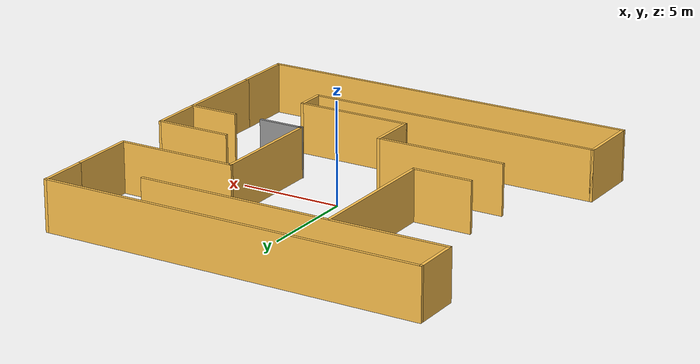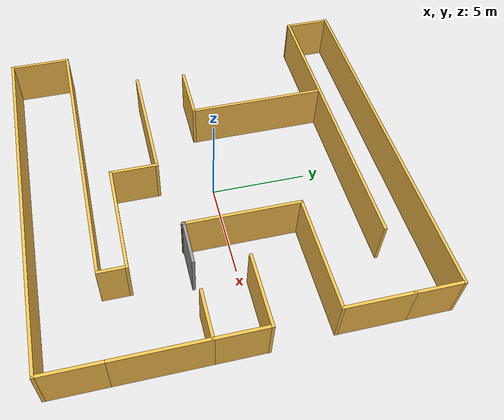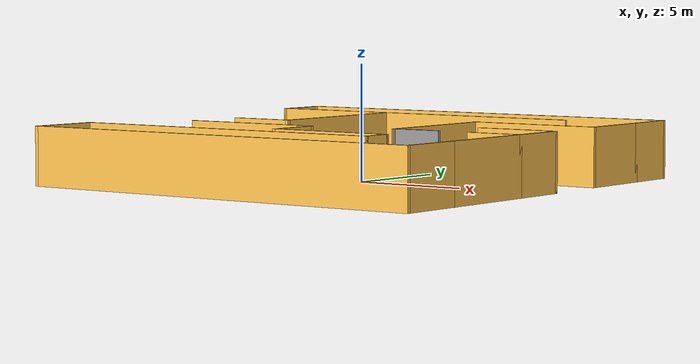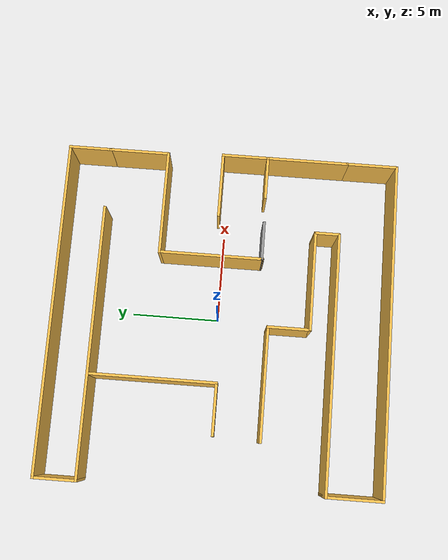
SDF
<?xml version='1.0'?>
<sdf version='1.7'>
  <model name='walls'>
    <pose>-0.145205 -0.183069 0 0 -0 0</pose>
    <link name='Wall_16'>
      <collision name='Wall_16_Collision'>
        <geometry>
          <box>
            <size>3.5 0.15 2.5</size>
          </box>
        </geometry>
        <pose>0 0 1.25 0 -0 0</pose>
      </collision>
      <visual name='Wall_16_Visual'>
        <pose>0 0 1.25 0 -0 0</pose>
        <geometry>
          <box>
            <size>3.5 0.15 2.5</size>
          </box>
        </geometry>
        <material>
          <script>
            <uri>file://media/materials/scripts/gazebo.material</uri>
            <name>Gazebo/Grey</name>
          </script>
          <ambient>1 0.764706 0.305882 1</ambient>
        </material>
        <meta>
          <layer>0</layer>
        </meta>
      </visual>
      <pose>9.3474 5.43857 0 0 -0 -1.5708</pose>
    </link>
    <link name='Wall_17'>
      <collision name='Wall_17_Collision'>
        <geometry>
          <box>
            <size>6 0.15 2.5</size>
          </box>
        </geometry>
        <pose>0 0 1.25 0 -0 0</pose>
      </collision>
      <visual name='Wall_17_Visual'>
        <pose>0 0 1.25 0 -0 0</pose>
        <geometry>
          <box>
            <size>6 0.15 2.5</size>
          </box>
        </geometry>
        <material>
          <script>
            <uri>file://media/materials/scripts/gazebo.material</uri>
            <name>Gazebo/Grey</name>
          </script>
          <ambient>1 0.764706 0.305882 1</ambient>
        </material>
        <meta>
          <layer>0</layer>
        </meta>
      </visual>
      <pose>6.4224 3.76357 0 0 -0 3.14159</pose>
    </link>
    <link name='Wall_18'>
      <collision name='Wall_18_Collision'>
        <geometry>
          <box>
            <size>6 0.15 2.5</size>
          </box>
        </geometry>
        <pose>0 0 1.25 0 -0 0</pose>
      </collision>
      <visual name='Wall_18_Visual'>
        <pose>0 0 1.25 0 -0 0</pose>
        <geometry>
          <box>
            <size>6 0.15 2.5</size>
          </box>
        </geometry>
        <material>
          <script>
            <uri>file://media/materials/scripts/gazebo.material</uri>
            <name>Gazebo/Grey</name>
          </script>
          <ambient>1 0.764706 0.305882 1</ambient>
        </material>
        <meta>
          <layer>0</layer>
        </meta>
      </visual>
      <pose>3.4974 0.838571 0 0 -0 -1.5708</pose>
    </link>
    <link name='Wall_21'>
      <collision name='Wall_21_Collision'>
        <geometry>
          <box>
            <size>0.19443 0.15 2.5</size>
          </box>
        </geometry>
        <pose>0 0 1.25 0 -0 0</pose>
      </collision>
      <visual name='Wall_21_Visual'>
        <pose>0 0 1.25 0 -0 0</pose>
        <geometry>
          <box>
            <size>0.19443 0.15 2.5</size>
          </box>
        </geometry>
        <material>
          <script>
            <uri>file://media/materials/scripts/gazebo.material</uri>
            <name>Gazebo/Grey</name>
          </script>
          <ambient>1 1 1 1</ambient>
        </material>
        <meta>
          <layer>0</layer>
        </meta>
      </visual>
      <pose>3.51086 -2.06875 0 0 -0 0.920084</pose>
    </link>
    <link name='Wall_22'>
      <collision name='Wall_22_Collision'>
        <geometry>
          <box>
            <size>2.25 0.15 2.5</size>
          </box>
        </geometry>
        <pose>0 0 1.25 0 -0 0</pose>
      </collision>
      <visual name='Wall_22_Visual'>
        <pose>0 0 1.25 0 -0 0</pose>
        <geometry>
          <box>
            <size>2.25 0.15 2.5</size>
          </box>
        </geometry>
        <material>
          <script>
            <uri>file://media/materials/scripts/gazebo.material</uri>
            <name>Gazebo/Grey</name>
          </script>
          <ambient>1 1 1 1</ambient>
        </material>
        <meta>
          <layer>0</layer>
        </meta>
      </visual>
      <pose>4.57432 -2.05108 0 0 -0 0</pose>
    </link>
    <link name='Wall_24'>
      <collision name='Wall_24_Collision'>
        <geometry>
          <box>
            <size>2.5 0.15 2.5</size>
          </box>
        </geometry>
        <pose>0 0 1.25 0 -0 0</pose>
      </collision>
      <visual name='Wall_24_Visual'>
        <pose>0 0 1.25 0 -0 0</pose>
        <geometry>
          <box>
            <size>2.5 0.15 2.5</size>
          </box>
        </geometry>
        <material>
          <script>
            <uri>file://media/materials/scripts/gazebo.material</uri>
            <name>Gazebo/Grey</name>
          </script>
          <ambient>1 0.764706 0.305882 1</ambient>
        </material>
        <meta>
          <layer>0</layer>
        </meta>
      </visual>
      <pose>8.3276 -2.01357 0 0 -0 0</pose>
    </link>
    <link name='Wall_25'>
      <collision name='Wall_25_Collision'>
        <geometry>
          <box>
            <size>2.75 0.15 2.5</size>
          </box>
        </geometry>
        <pose>0 0 1.25 0 -0 0</pose>
      </collision>
      <visual name='Wall_25_Visual'>
        <pose>0 0 1.25 0 -0 0</pose>
        <geometry>
          <box>
            <size>2.75 0.15 2.5</size>
          </box>
        </geometry>
        <material>
          <script>
            <uri>file://media/materials/scripts/gazebo.material</uri>
            <name>Gazebo/Grey</name>
          </script>
          <ambient>1 0.764706 0.305882 1</ambient>
        </material>
        <meta>
          <layer>0</layer>
        </meta>
      </visual>
      <pose>9.5026 -0.71357 0 0 -0 1.5708</pose>
    </link>
    <link name='Wall_26'>
      <collision name='Wall_26_Collision'>
        <geometry>
          <box>
            <size>3.75 0.15 2.5</size>
          </box>
        </geometry>
        <pose>0 0 1.25 0 -0 0</pose>
      </collision>
      <visual name='Wall_26_Visual'>
        <pose>0 0 1.25 0 -0 0</pose>
        <geometry>
          <box>
            <size>3.75 0.15 2.5</size>
          </box>
        </geometry>
        <material>
          <script>
            <uri>file://media/materials/scripts/gazebo.material</uri>
            <name>Gazebo/Grey</name>
          </script>
          <ambient>1 0.764706 0.305882 1</ambient>
        </material>
        <meta>
          <layer>0</layer>
        </meta>
      </visual>
      <pose>7.7026 0.58643 0 0 -0 3.14159</pose>
    </link>
    <link name='Wall_28'>
      <collision name='Wall_28_Collision'>
        <geometry>
          <box>
            <size>4.75 0.15 2.5</size>
          </box>
        </geometry>
        <pose>0 0 1.25 0 -0 0</pose>
      </collision>
      <visual name='Wall_28_Visual'>
        <pose>0 0 1.25 0 -0 0</pose>
        <geometry>
          <box>
            <size>4.75 0.15 2.5</size>
          </box>
        </geometry>
        <material>
          <script>
            <uri>file://media/materials/scripts/gazebo.material</uri>
            <name>Gazebo/Grey</name>
          </script>
          <ambient>1 0.764706 0.305882 1</ambient>
        </material>
        <meta>
          <layer>0</layer>
        </meta>
      </visual>
      <pose>9.5026 -4.31357 0 0 -0 -1.5708</pose>
    </link>
    <link name='Wall_29'>
      <collision name='Wall_29_Collision'>
        <geometry>
          <box>
            <size>3 0.15 2.5</size>
          </box>
        </geometry>
        <pose>0 0 1.25 0 -0 0</pose>
      </collision>
      <visual name='Wall_29_Visual'>
        <pose>0 0 1.25 0 -0 0</pose>
        <geometry>
          <box>
            <size>3 0.15 2.5</size>
          </box>
        </geometry>
        <material>
          <script>
            <uri>file://media/materials/scripts/gazebo.material</uri>
            <name>Gazebo/Grey</name>
          </script>
          <ambient>1 0.764706 0.305882 1</ambient>
        </material>
        <meta>
          <layer>0</layer>
        </meta>
      </visual>
      <pose>9.5026 -8.03857 0 0 -0 -1.5708</pose>
    </link>
    <link name='Wall_30'>
      <collision name='Wall_30_Collision'>
        <geometry>
          <box>
            <size>19 0.15 2.5</size>
          </box>
        </geometry>
        <pose>0 0 1.25 0 -0 0</pose>
      </collision>
      <visual name='Wall_30_Visual'>
        <pose>0 0 1.25 0 -0 0</pose>
        <geometry>
          <box>
            <size>19 0.15 2.5</size>
          </box>
        </geometry>
        <material>
          <script>
            <uri>file://media/materials/scripts/gazebo.material</uri>
            <name>Gazebo/Grey</name>
          </script>
          <ambient>1 0.764706 0.305882 1</ambient>
        </material>
        <meta>
          <layer>0</layer>
        </meta>
      </visual>
      <pose>0.077596 -9.46357 0 0 -0 3.14159</pose>
    </link>
    <link name='Wall_31'>
      <collision name='Wall_31_Collision'>
        <geometry>
          <box>
            <size>3.25 0.15 2.5</size>
          </box>
        </geometry>
        <pose>0 0 1.25 0 -0 0</pose>
      </collision>
      <visual name='Wall_31_Visual'>
        <pose>0 0 1.25 0 -0 0</pose>
        <geometry>
          <box>
            <size>3.25 0.15 2.5</size>
          </box>
        </geometry>
        <material>
          <script>
            <uri>file://media/materials/scripts/gazebo.material</uri>
            <name>Gazebo/Grey</name>
          </script>
          <ambient>1 0.764706 0.305882 1</ambient>
        </material>
        <meta>
          <layer>0</layer>
        </meta>
      </visual>
      <pose>-9.3474 -7.91357 0 0 -0 1.5708</pose>
    </link>
    <link name='Wall_32'>
      <collision name='Wall_32_Collision'>
        <geometry>
          <box>
            <size>14.75 0.15 2.5</size>
          </box>
        </geometry>
        <pose>0 0 1.25 0 -0 0</pose>
      </collision>
      <visual name='Wall_32_Visual'>
        <pose>0 0 1.25 0 -0 0</pose>
        <geometry>
          <box>
            <size>14.75 0.15 2.5</size>
          </box>
        </geometry>
        <material>
          <script>
            <uri>file://media/materials/scripts/gazebo.material</uri>
            <name>Gazebo/Grey</name>
          </script>
          <ambient>1 0.764706 0.305882 1</ambient>
        </material>
        <meta>
          <layer>0</layer>
        </meta>
      </visual>
      <pose>-2.0474 -6.36357 0 0 -0 0</pose>
    </link>
    <link name='Wall_33'>
      <collision name='Wall_33_Collision'>
        <geometry>
          <box>
            <size>1.5 0.15 2.5</size>
          </box>
        </geometry>
        <pose>0 0 1.25 0 -0 0</pose>
      </collision>
      <visual name='Wall_33_Visual'>
        <pose>0 0 1.25 0 -0 0</pose>
        <geometry>
          <box>
            <size>1.5 0.15 2.5</size>
          </box>
        </geometry>
        <material>
          <script>
            <uri>file://media/materials/scripts/gazebo.material</uri>
            <name>Gazebo/Grey</name>
          </script>
          <ambient>1 0.764706 0.305882 1</ambient>
        </material>
        <meta>
          <layer>0</layer>
        </meta>
      </visual>
      <pose>5.2526 -5.68857 0 0 -0 1.5708</pose>
    </link>
    <link name='Wall_34'>
      <collision name='Wall_34_Collision'>
        <geometry>
          <box>
            <size>5.75 0.15 2.5</size>
          </box>
        </geometry>
        <pose>0 0 1.25 0 -0 0</pose>
      </collision>
      <visual name='Wall_34_Visual'>
        <pose>0 0 1.25 0 -0 0</pose>
        <geometry>
          <box>
            <size>5.75 0.15 2.5</size>
          </box>
        </geometry>
        <material>
          <script>
            <uri>file://media/materials/scripts/gazebo.material</uri>
            <name>Gazebo/Grey</name>
          </script>
          <ambient>1 0.764706 0.305882 1</ambient>
        </material>
        <meta>
          <layer>0</layer>
        </meta>
      </visual>
      <pose>2.4526 -5.01357 0 0 -0 3.14159</pose>
    </link>
    <link name='Wall_35'>
      <collision name='Wall_35_Collision'>
        <geometry>
          <box>
            <size>2.5 0.15 2.5</size>
          </box>
        </geometry>
        <pose>0 0 1.25 0 -0 0</pose>
      </collision>
      <visual name='Wall_35_Visual'>
        <pose>0 0 1.25 0 -0 0</pose>
        <geometry>
          <box>
            <size>2.5 0.15 2.5</size>
          </box>
        </geometry>
        <material>
          <script>
            <uri>file://media/materials/scripts/gazebo.material</uri>
            <name>Gazebo/Grey</name>
          </script>
          <ambient>1 0.764706 0.305882 1</ambient>
        </material>
        <meta>
          <layer>0</layer>
        </meta>
      </visual>
      <pose>-0.347404 -3.83857 0 0 -0 1.5708</pose>
    </link>
    <link name='Wall_36'>
      <collision name='Wall_36_Collision'>
        <geometry>
          <box>
            <size>6.5 0.15 2.5</size>
          </box>
        </geometry>
        <pose>0 0 1.25 0 -0 0</pose>
      </collision>
      <visual name='Wall_36_Visual'>
        <pose>0 0 1.25 0 -0 0</pose>
        <geometry>
          <box>
            <size>6.5 0.15 2.5</size>
          </box>
        </geometry>
        <material>
          <script>
            <uri>file://media/materials/scripts/gazebo.material</uri>
            <name>Gazebo/Grey</name>
          </script>
          <ambient>1 0.764706 0.305882 1</ambient>
        </material>
        <meta>
          <layer>0</layer>
        </meta>
      </visual>
      <pose>-3.5224 -2.66357 0 0 -0 3.14159</pose>
    </link>
    <link name='Wall_38'>
      <collision name='Wall_38_Collision'>
        <geometry>
          <box>
            <size>2.5 0.15 2.5</size>
          </box>
        </geometry>
        <pose>0 0 1.25 0 -0 0</pose>
      </collision>
      <visual name='Wall_38_Visual'>
        <pose>0 0 1.25 0 -0 0</pose>
        <geometry>
          <box>
            <size>2.5 0.15 2.5</size>
          </box>
        </geometry>
        <material>
          <script>
            <uri>file://media/materials/scripts/gazebo.material</uri>
            <name>Gazebo/Grey</name>
          </script>
          <ambient>1 0.764706 0.305882 1</ambient>
        </material>
        <meta>
          <layer>0</layer>
        </meta>
      </visual>
      <pose>9.3474 8.28857 0 0 -0 1.5708</pose>
    </link>
    <link name='Wall_39'>
      <collision name='Wall_39_Collision'>
        <geometry>
          <box>
            <size>19 0.15 2.5</size>
          </box>
        </geometry>
        <pose>0 0 1.25 0 -0 0</pose>
      </collision>
      <visual name='Wall_39_Visual'>
        <pose>0 0 1.25 0 -0 0</pose>
        <geometry>
          <box>
            <size>19 0.15 2.5</size>
          </box>
        </geometry>
        <material>
          <script>
            <uri>file://media/materials/scripts/gazebo.material</uri>
            <name>Gazebo/Grey</name>
          </script>
          <ambient>1 0.764706 0.305882 1</ambient>
        </material>
        <meta>
          <layer>0</layer>
        </meta>
      </visual>
      <pose>-0.077596 9.46357 0 0 -0 3.14159</pose>
    </link>
    <link name='Wall_40'>
      <collision name='Wall_40_Collision'>
        <geometry>
          <box>
            <size>2.5 0.15 2.5</size>
          </box>
        </geometry>
        <pose>0 0 1.25 0 -0 0</pose>
      </collision>
      <visual name='Wall_40_Visual'>
        <pose>0 0 1.25 0 -0 0</pose>
        <geometry>
          <box>
            <size>2.5 0.15 2.5</size>
          </box>
        </geometry>
        <material>
          <script>
            <uri>file://media/materials/scripts/gazebo.material</uri>
            <name>Gazebo/Grey</name>
          </script>
          <ambient>1 0.764706 0.305882 1</ambient>
        </material>
        <meta>
          <layer>0</layer>
        </meta>
      </visual>
      <pose>-9.5026 8.28857 0 0 -0 -1.5708</pose>
    </link>
    <link name='Wall_41'>
      <collision name='Wall_41_Collision'>
        <geometry>
          <box>
            <size>15.5 0.15 2.5</size>
          </box>
        </geometry>
        <pose>0 0 1.25 0 -0 0</pose>
      </collision>
      <visual name='Wall_41_Visual'>
        <pose>0 0 1.25 0 -0 0</pose>
        <geometry>
          <box>
            <size>15.5 0.15 2.5</size>
          </box>
        </geometry>
        <material>
          <script>
            <uri>file://media/materials/scripts/gazebo.material</uri>
            <name>Gazebo/Grey</name>
          </script>
          <ambient>1 0.764706 0.305882 1</ambient>
        </material>
        <meta>
          <layer>0</layer>
        </meta>
      </visual>
      <pose>-1.8276 7.11357 0 0 -0 0</pose>
    </link>
    <link name='Wall_43'>
      <collision name='Wall_43_Collision'>
        <geometry>
          <box>
            <size>7.25 0.15 2.5</size>
          </box>
        </geometry>
        <pose>0 0 1.25 0 -0 0</pose>
      </collision>
      <visual name='Wall_43_Visual'>
        <pose>0 0 1.25 0 -0 0</pose>
        <geometry>
          <box>
            <size>7.25 0.15 2.5</size>
          </box>
        </geometry>
        <material>
          <script>
            <uri>file://media/materials/scripts/gazebo.material</uri>
            <name>Gazebo/Grey</name>
          </script>
          <ambient>1 0.764706 0.305882 1</ambient>
        </material>
        <meta>
          <layer>0</layer>
        </meta>
      </visual>
      <pose>-3.68722 3.51337 0 0 -0 -1.5708</pose>
    </link>
    <link name='Wall_44'>
      <collision name='Wall_44_Collision'>
        <geometry>
          <box>
            <size>3 0.15 2.5</size>
          </box>
        </geometry>
        <pose>0 0 1.25 0 -0 0</pose>
      </collision>
      <visual name='Wall_44_Visual'>
        <pose>0 0 1.25 0 -0 0</pose>
        <geometry>
          <box>
            <size>3 0.15 2.5</size>
          </box>
        </geometry>
        <material>
          <script>
            <uri>file://media/materials/scripts/gazebo.material</uri>
            <name>Gazebo/Grey</name>
          </script>
          <ambient>1 0.764706 0.305882 1</ambient>
        </material>
        <meta>
          <layer>0</layer>
        </meta>
      </visual>
      <pose>-5.11222 -0.036629 0 0 -0 3.14159</pose>
    </link>
    <static>1</static>
  </model>
</sdf>
